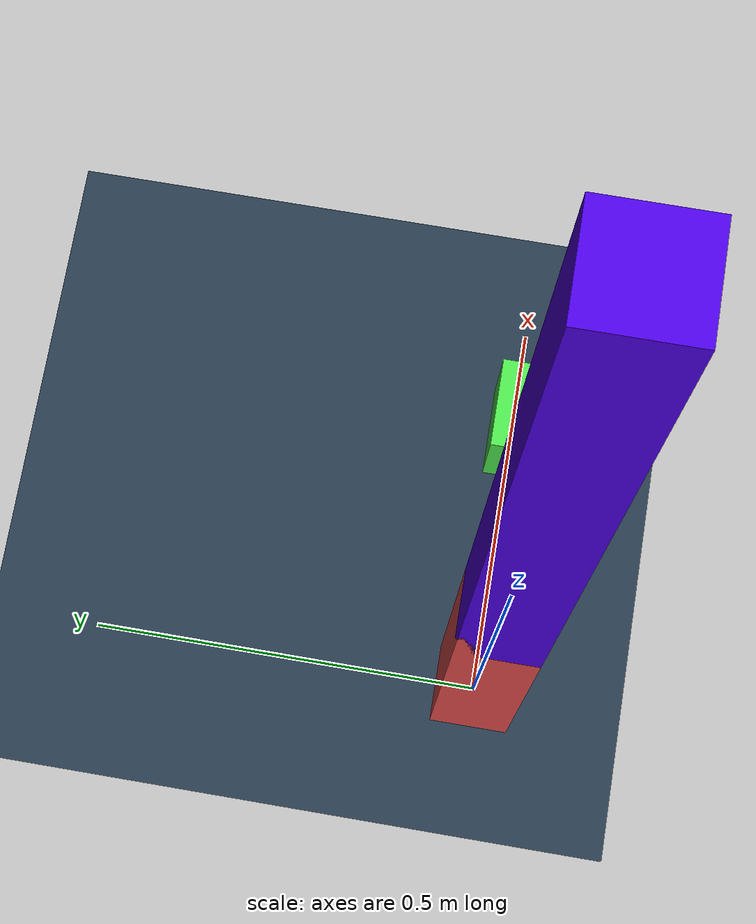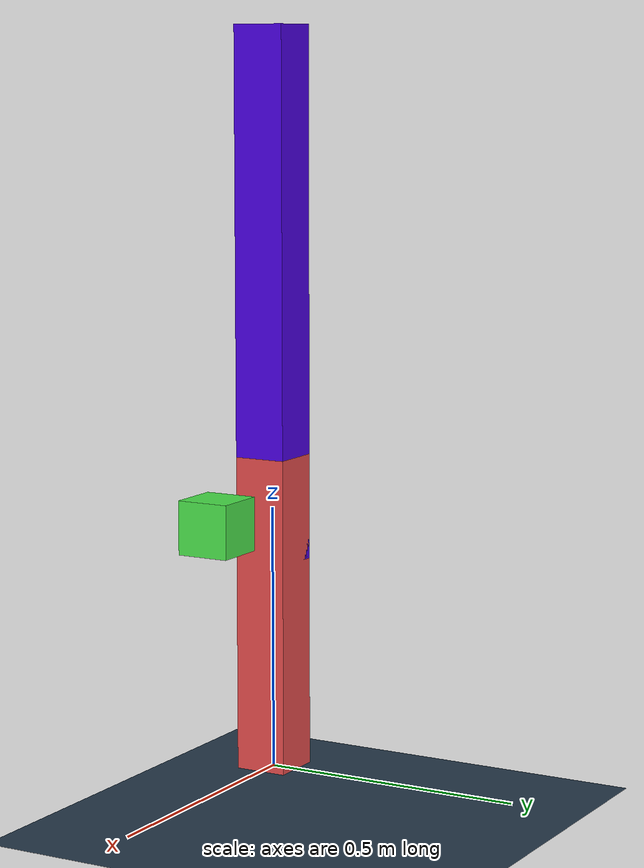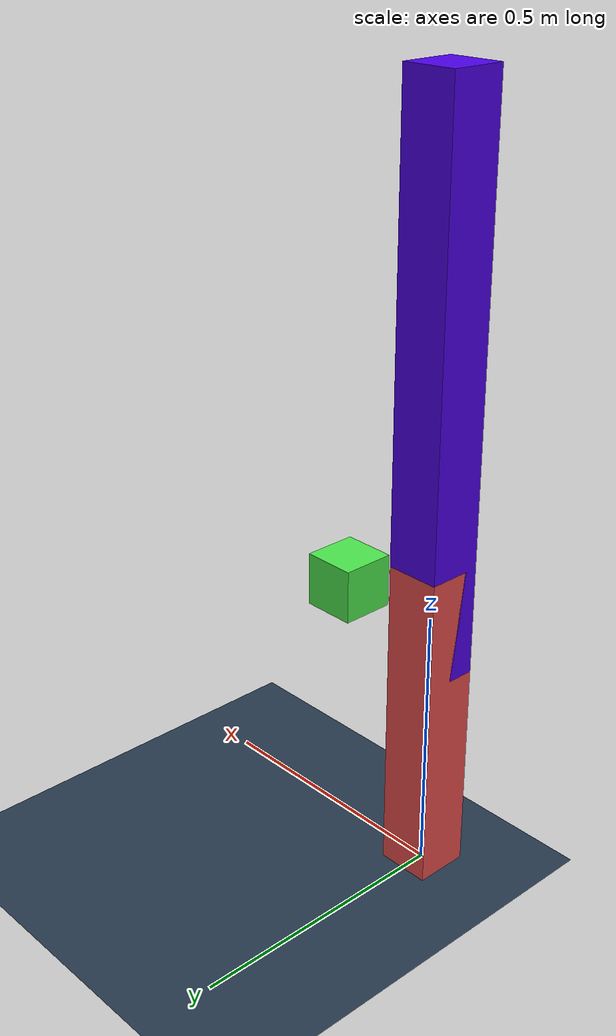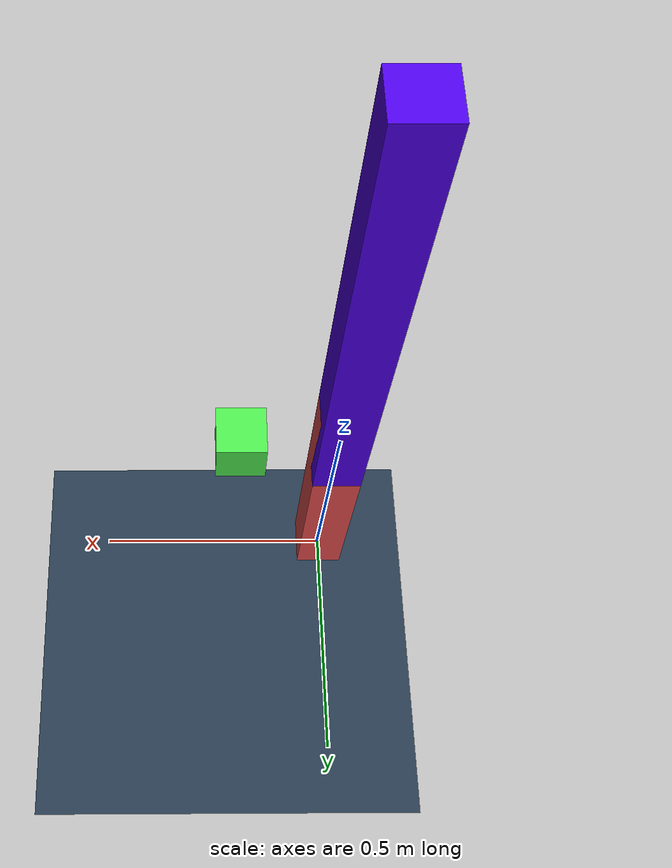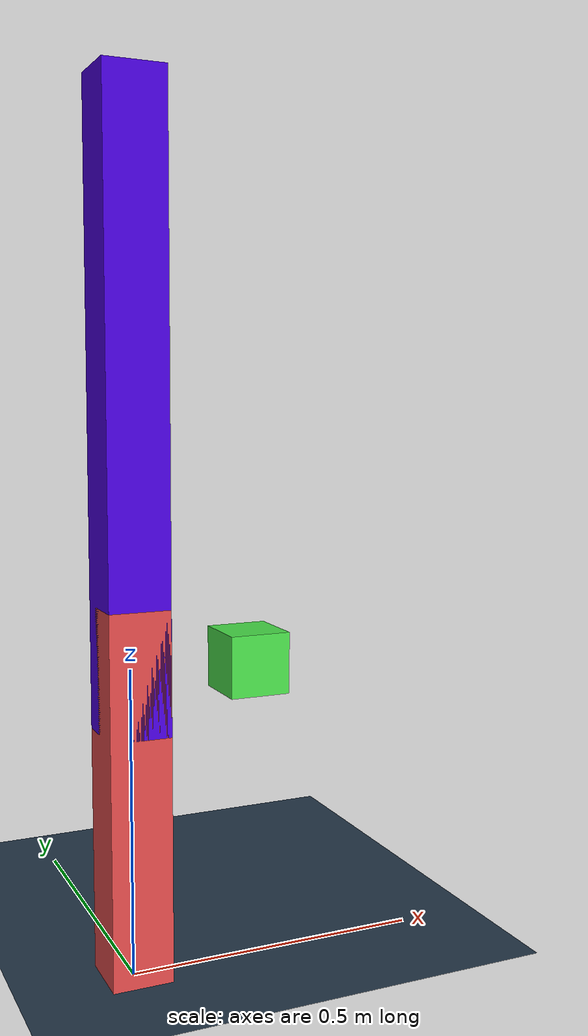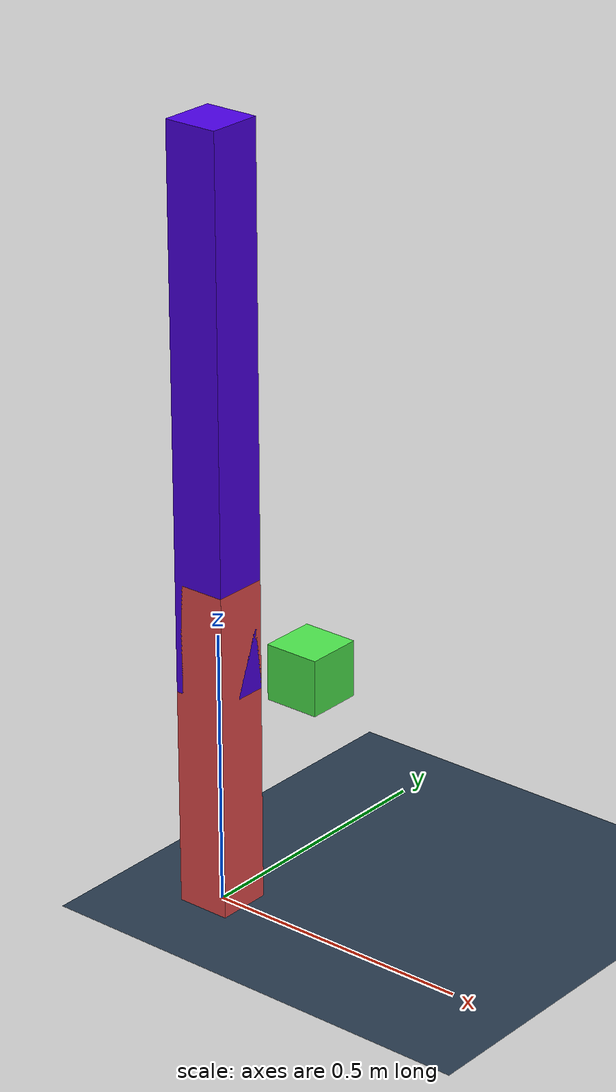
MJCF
<mujoco>
  <compiler angle="radian"/>

  <asset>
    <texture name="plane" type="2d" builtin="checker" rgb1=".2 .3 .4" rgb2=".1 0.15 0.2" width="256" height="256" mark="cross" markrgb=".8 .8 .8" />
    <material name="plane" reflectance="0.0" texture="plane" texrepeat="1 1" texuniform="true" />
  </asset>

  <worldbody>

    <geom name="floor" pos="0 0 -.0" group="1" size="0 0 .1" type="plane" material="plane" condim="3" />

    <body name="base">
      <body name="link1" pos="0 0 0.0">
        <geom type='box' size="0.05 0.05 0.3" pos="0 0 0.3" mass="0.5" rgba="0.9 0.3 0.3 1.0"/>
        <joint name="joint1" type="hinge" axis="0 0 1" pos="0 0 0" range="-3.141592 3.141592"/>
        <body name="link2" pos="0 0 0.6">
          <geom type="box" size="0.05 0.05 0.5" pos="0 0 0.3" mass="0.3" rgba="0.3 0.0 0.9 1.0" />
          <joint name="joint2" type="hinge" axis="1 0 0" pos="0 0 0" range="-3.141592 3.141592"/>
        </body>
      </body>
    </body>

    <body name="box" pos="0.2 0 0.5">
      <geom type="box" size="0.05 0.05 0.05" rgba="0.3 0.9 0.3 1.0"/>
      <joint name="box_joint" type="free"/>
    </body>
  </worldbody>

  <actuator>
    <position joint="joint1" kp="5" kv="1" ctrlrange="-3.141592 3.141592"/>
    <position joint="joint2" kp="5" kv="1" ctrlrange="-3.141592 3.141592"/>
  </actuator>
</mujoco>
